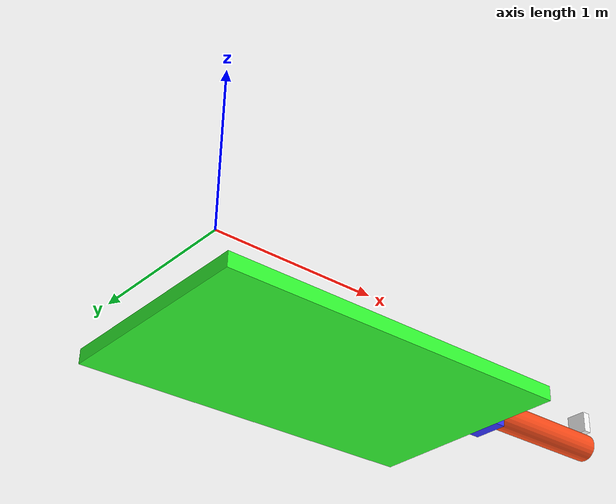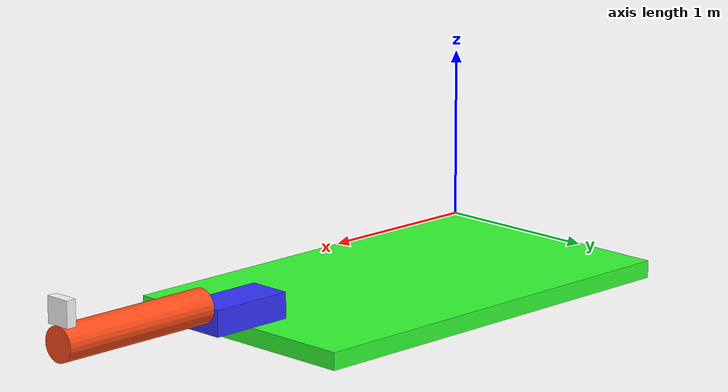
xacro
<?xml version='1.0'?>

<robot name="arm_robot" xmlns:xacro="http://www.ros.org/wiki/xacro">
<xacro:include filename="example_include.xacro" />
    <link name="world"></link>
    <joint name="base_joint" type="fixed">
        <origin xyz="1.5 1.0 0" rpy="0 0 0"/>
        <parent link="world"/>
        <child link="base_link"/>
    </joint>
    <link name="base_link">
        <visual>
            <origin xyz="0 0 0.05" rpy="0 0 0"/>
            <geometry>
                <box size="2.5 1.5 0.1" />
            </geometry>
            <material name="green">
                <color rgba="0.2 1 0.2 1"/>
            </material>
        </visual>
        <collision>
            <origin xyz="0 0 0.05" rpy="0 0 0"/>
            <geometry>
                <box size="2.5 1.5 0.1"/>
            </geometry>
        </collision>
        <inertial>
            <origin xyz="0 0 0.05" rpy="0 0 0"/>
            <mass value="12"/>
            <inertia ixx="2.26" ixy="0.0" ixz="0.0" iyy="6.26" iyz="0.0" izz="8.5"/>
        </inertial>
    </link>
    <joint name="slider_joint" type="prismatic">
        <origin xyz="1.25 0 0.1" rpy="0 0 0"/>
        <parent link="base_link"/>
        <child link="slider_link"/>
        <axis xyz="1 0 0"/>
        <limit lower="0" upper="2" velocity="0" effort="0"/>
	<hardwareInterface>hardware_interface/PositionJointInterface</hardwareInterface>
    </joint>
    <link name="slider_link">
        <visual>
            <origin xyz="0 0 0.075" rpy="0 0 0"/>
            <geometry>
                <box size="0.5 0.25 0.15"/>
            </geometry>
            <material name="blue"/>
        </visual>
        <collision>
            <origin xyz="0 0 0.075" rpy="0 0 0"/>
            <geometry>
                <box size="0.5 0.25 0.15"/>
            </geometry>
        </collision>
        <xacro:inertial_box mass="0.5" x="0.5" y="0.25" z="0.15">
            <origin xyz="0 0 0.075" rpy="0 0 0"/>
        </xacro:inertial_box>
    </link>
    <joint name="arm_joint" type="revolute">
        <origin xyz="0.25 0 0.15" rpy="0 0 0"/>
        <parent link="slider_link"/>
        <child link="arm_link"/>
        <axis xyz="0 -1 0"/>
        <limit lower="0" upper="1.57" velocity="0" effort="0"/>
	<hardwareInterface>hardware_interface/PositionJointInterface</hardwareInterface>
    </joint>
    <xacro:property name="arm_length" value="1"/>
    <xacro:property name="arm_radius" value="0.1"/>
    <link name="arm_link">
        <visual>
            <origin xyz="0.5 0 0" rpy="0 1.57 0"/>
            <geometry>
                <cylinder length="1" radius="0.1"/>
            </geometry>
            <material name="orange"/>
        </visual>
        <collision>
            <origin xyz="0.5 0 0" rpy="0 1.57 0"/>
            <geometry>
                <cylinder length="1" radius="0.1"/>
            </geometry>
        </collision>
        <xacro:inertial_cylinder mass="1.0" length="1" radius="0.1">
            <origin xyz="0.5 0 0" rpy="0 1.57 0"/>
        </xacro:inertial_cylinder>
    </link>
    <joint name="camera_joint" type="fixed">
        <origin xyz="1 0 0.175" rpy="0 0 0"/>
        <parent link="arm_link"/>
        <child link="camera_link"/>
    </joint>
    <link name="camera_link">
        <visual>
            <origin xyz="-0.03 0 0" rpy="0 0 0"/>
            <geometry>
                <box size="0.06 0.15 0.15"/>
            </geometry>
            <material name="white"/>
        </visual>
        <collision>
            <origin xyz="0 0 0" rpy="0 0 0"/>
            <geometry>
                <box size="0.06 0.15 0.15"/>
            </geometry>
        </collision>
        <xacro:inertial_box mass="0.1" x="0.06" y="0.15" z="0.15">
            <origin xyz="0 0 0" rpy="0 0 0"/>
        </xacro:inertial_box>
    </link>
<gazebo reference="base_link">
    <material>Gazebo/Green</material>
  </gazebo>
<gazebo reference="slider_link">
    <material>Gazebo/Blue</material>
  </gazebo>
<gazebo reference="arm_link">
    <material>Gazebo/Orange</material>
  </gazebo>
<gazebo reference="camera_link">
    <material>Gazebo/White</material>
  </gazebo>
<gazebo>
  <plugin name="gazebo_ros_control" filename="libgazebo_ros_control.so">
    <robotNamespace>/arm_robot</robotNamespace>
  </plugin>
</gazebo>

</robot>

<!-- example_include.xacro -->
<robot xmlns:xacro="http://www.ros.org/wiki/xacro">
    <material name="white">
        <color rgba="1 1 1 1"/>
    </material>
    <material name="orange">
        <color rgba="1 0.3 0.1 1"/>
    </material>
    <material name="blue">
        <color rgba="0.2 0.2 1 1"/>
    </material>
    <xacro:macro name="inertial_sphere" params="mass radius *origin">
        <inertial>
            <xacro:insert_block name="origin"/>
            <mass value="${mass}"/>
            <inertia ixx="${(2/5) * mass * (radius*radius)}" ixy="0.0" ixz="0.0"
                    iyy="${(2/5) * mass * (radius*radius)}" iyz="0.0"
                    izz="${(2/5) * mass * (radius*radius)}" />
           </inertial>
    </xacro:macro>
    <xacro:macro name="inertial_box" params="mass x y z *origin">
        <inertial>
            <xacro:insert_block name="origin"/>
            <mass value="${mass}"/>
            <inertia ixx="${(1/12) * mass * (y*y+z*z)}" ixy="0.0" ixz="0.0"
                    iyy="${(1/12) * mass * (x*x+z*z)}" iyz="0.0"
                    izz="${(1/12) * mass * (x*x+y*y)}" />
           </inertial>
    </xacro:macro>
    <xacro:macro name="inertial_cylinder" params="mass length radius *origin">
        <inertial>
            <xacro:insert_block name="origin"/>
            <mass value="${mass}"/>
            <inertia ixx="${(1/12) * mass * (3*radius*radius + length*length)}" ixy="0.0" ixz="0.0"
                    iyy="${(1/12) * mass * (3*radius*radius + length*length)}" iyz="0.0"
                    izz="${(1/2) * mass * (radius*radius)}" />
           </inertial>
    </xacro:macro>
</robot>
